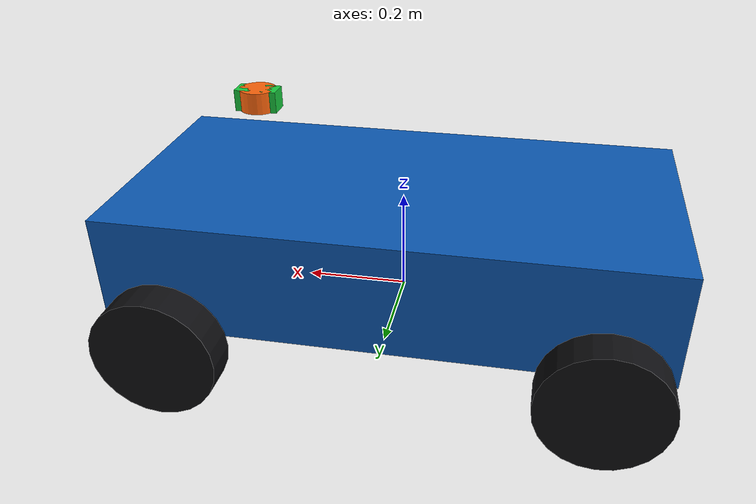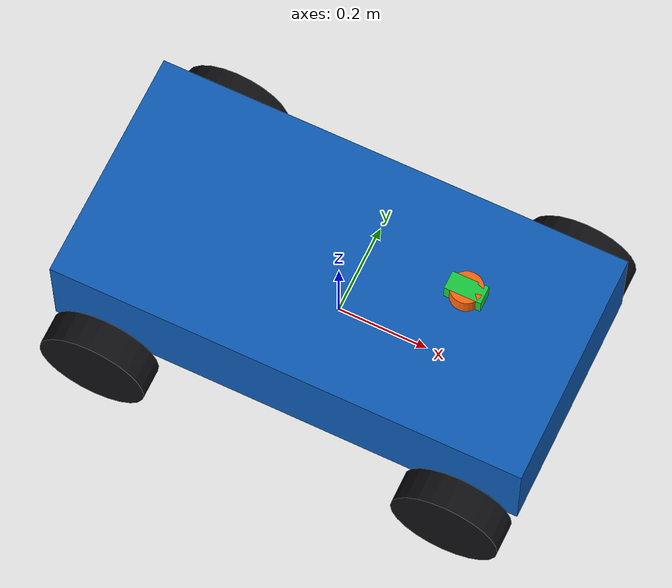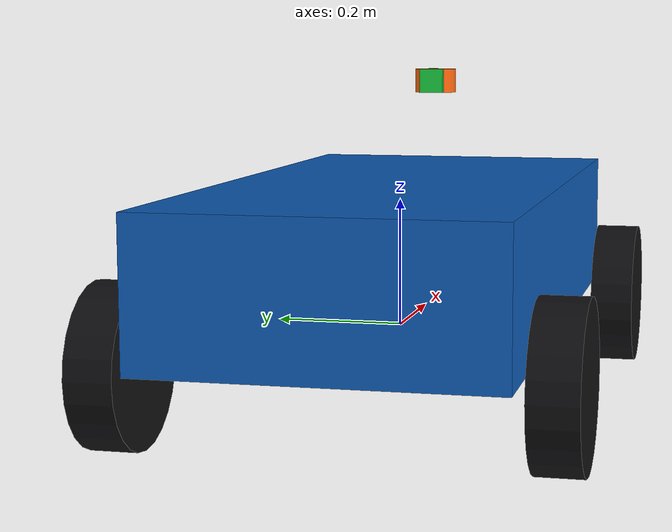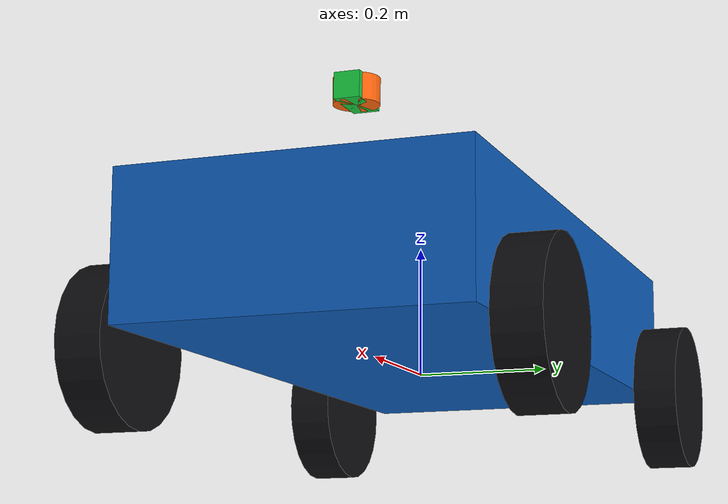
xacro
<?xml version="1.0"?>
<!-- SI; x forward, y left, z up. Dimensions from course-kit v1-w06 model.sdf. -->
<robot xmlns:xacro="http://www.ros.org/wiki/xacro" name="course_ackermann">
  <xacro:arg name="wheelbase" default="0.8"/>
  <xacro:arg name="track" default="0.62"/>
  <xacro:arg name="wheel_radius" default="0.12"/>
  <xacro:property name="wheelbase" value="$(arg wheelbase)"/>
  <xacro:property name="track" value="$(arg track)"/>
  <xacro:property name="radius" value="$(arg wheel_radius)"/>
  <xacro:property name="wheel_width" value="0.07"/>
  <xacro:property name="body_length" value="1.05"/>
  <xacro:property name="body_width" value="0.52"/>
  <xacro:property name="body_height" value="0.22"/>

  <material name="body_blue"><color rgba="0.05 0.36 0.72 1"/></material>
  <material name="rubber"><color rgba="0.06 0.06 0.07 1"/></material>
  <material name="camera_green"><color rgba="0.1 0.8 0.25 1"/></material>
  <material name="lidar_orange"><color rgba="1.0 0.4 0.05 1"/></material>
  <material name="imu_red"><color rgba="0.9 0.1 0.15 1"/></material>

  <xacro:macro name="box_inertia" params="mass x y z xyz:='0 0 0'">
    <inertial>
      <origin xyz="${xyz}"/><mass value="${mass}"/>
      <inertia ixx="${mass*(y*y+z*z)/12}" ixy="0" ixz="0"
               iyy="${mass*(x*x+z*z)/12}" iyz="0" izz="${mass*(x*x+y*y)/12}"/>
    </inertial>
  </xacro:macro>

  <link name="base_link">
    <visual><origin xyz="0 0 0.12"/><geometry>
      <box size="${body_length} ${body_width} ${body_height}"/>
    </geometry><material name="body_blue"/></visual>
    <collision><origin xyz="0 0 0.12"/><geometry>
      <box size="${body_length} ${body_width} ${body_height}"/>
    </geometry></collision>
    <xacro:box_inertia mass="12.0" x="${body_length}" y="${body_width}"
                       z="${body_height}" xyz="0 0 0.12"/>
  </link>

  <xacro:macro name="wheel" params="name parent xyz">
    <link name="${name}_wheel">
      <!-- Cylinder's local Z axis is rotated onto the axle; joint axis is Y. -->
      <visual><origin rpy="${pi/2} 0 0"/><geometry>
        <cylinder radius="${radius}" length="${wheel_width}"/>
      </geometry><material name="rubber"/></visual>
      <collision><origin rpy="${pi/2} 0 0"/><geometry>
        <cylinder radius="${radius}" length="${wheel_width}"/>
      </geometry></collision>
      <inertial><mass value="0.8"/>
        <inertia ixx="${0.8*(3*radius*radius+wheel_width*wheel_width)/12}"
                 ixy="0" ixz="0" iyy="${0.8*radius*radius/2}" iyz="0"
                 izz="${0.8*(3*radius*radius+wheel_width*wheel_width)/12}"/>
      </inertial>
    </link>
    <joint name="${name}_wheel_joint" type="continuous">
      <parent link="${parent}"/><child link="${name}_wheel"/>
      <origin xyz="${xyz}"/><axis xyz="0 1 0"/>
    </joint>
  </xacro:macro>

  <xacro:macro name="front_corner" params="name side">
    <link name="${name}_knuckle">
      <visual><geometry><box size="0.04 0.04 0.06"/></geometry>
        <material name="rubber"/></visual>
      <collision><geometry><box size="0.04 0.04 0.06"/></geometry></collision>
      <xacro:box_inertia mass="0.2" x="0.04" y="0.04" z="0.06"/>
    </link>
    <joint name="${name}_steering_joint" type="revolute">
      <parent link="base_link"/><child link="${name}_knuckle"/>
      <origin xyz="${wheelbase/2} ${side*track/2} 0"/><axis xyz="0 0 1"/>
      <limit lower="-0.55" upper="0.55" effort="25" velocity="1.0"/>
    </joint>
    <xacro:wheel name="${name}" parent="${name}_knuckle" xyz="0 0 0"/>
  </xacro:macro>
  <xacro:front_corner name="front_left" side="1"/>
  <xacro:front_corner name="front_right" side="-1"/>
  <xacro:wheel name="rear_left" parent="base_link" xyz="${-wheelbase/2} ${track/2} 0"/>
  <xacro:wheel name="rear_right" parent="base_link" xyz="${-wheelbase/2} ${-track/2} 0"/>

  <!-- The source SDF deliberately places all three sensor frames at this mount. -->
  <link name="camera_link">
    <visual><geometry><box size="0.08 0.04 0.04"/></geometry>
      <material name="camera_green"/></visual>
    <collision><geometry><box size="0.08 0.04 0.04"/></geometry></collision>
    <xacro:box_inertia mass="0.033333333333" x="0.08" y="0.04" z="0.04"/>
  </link>
  <joint name="camera_joint" type="fixed">
    <parent link="base_link"/><child link="camera_link"/><origin xyz="0.28 0 0.38"/>
  </joint>
  <link name="camera_optical_frame"/>
  <joint name="camera_optical_joint" type="fixed">
    <parent link="camera_link"/><child link="camera_optical_frame"/>
    <origin rpy="${-pi/2} 0 ${-pi/2}"/>
  </joint>

  <link name="lidar_link">
    <visual><geometry><cylinder radius="0.035" length="0.04"/></geometry>
      <material name="lidar_orange"/></visual>
    <collision><geometry><cylinder radius="0.035" length="0.04"/></geometry></collision>
    <inertial><mass value="0.033333333333"/>
      <inertia ixx="${0.033333333333*(3*0.035*0.035+0.04*0.04)/12}"
               ixy="0" ixz="0" iyy="${0.033333333333*(3*0.035*0.035+0.04*0.04)/12}"
               iyz="0" izz="${0.033333333333*0.035*0.035/2}"/>
    </inertial>
  </link>
  <joint name="lidar_joint" type="fixed">
    <parent link="base_link"/><child link="lidar_link"/><origin xyz="0.28 0 0.38"/>
  </joint>

  <link name="imu_link">
    <visual><geometry><box size="0.025 0.02 0.01"/></geometry>
      <material name="imu_red"/></visual>
    <collision><geometry><box size="0.025 0.02 0.01"/></geometry></collision>
    <xacro:box_inertia mass="0.033333333334" x="0.025" y="0.02" z="0.01"/>
  </link>
  <joint name="imu_joint" type="fixed">
    <parent link="base_link"/><child link="imu_link"/><origin xyz="0.28 0 0.38"/>
  </joint>
</robot>
